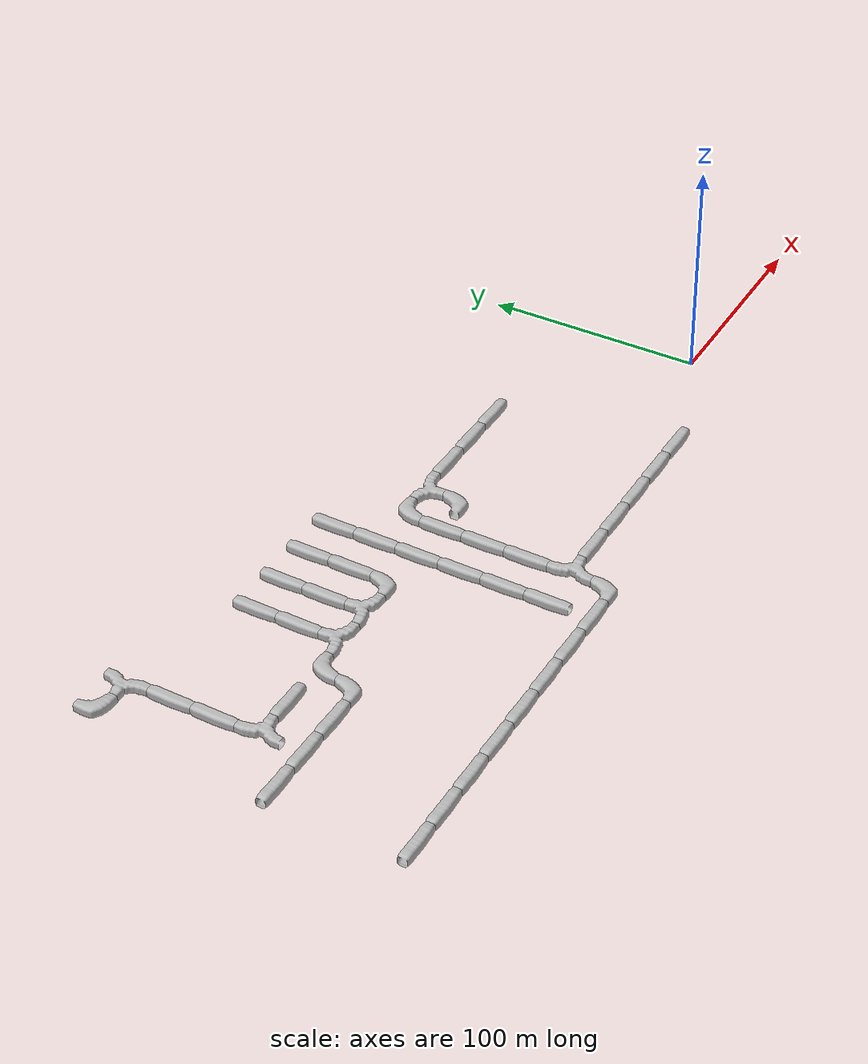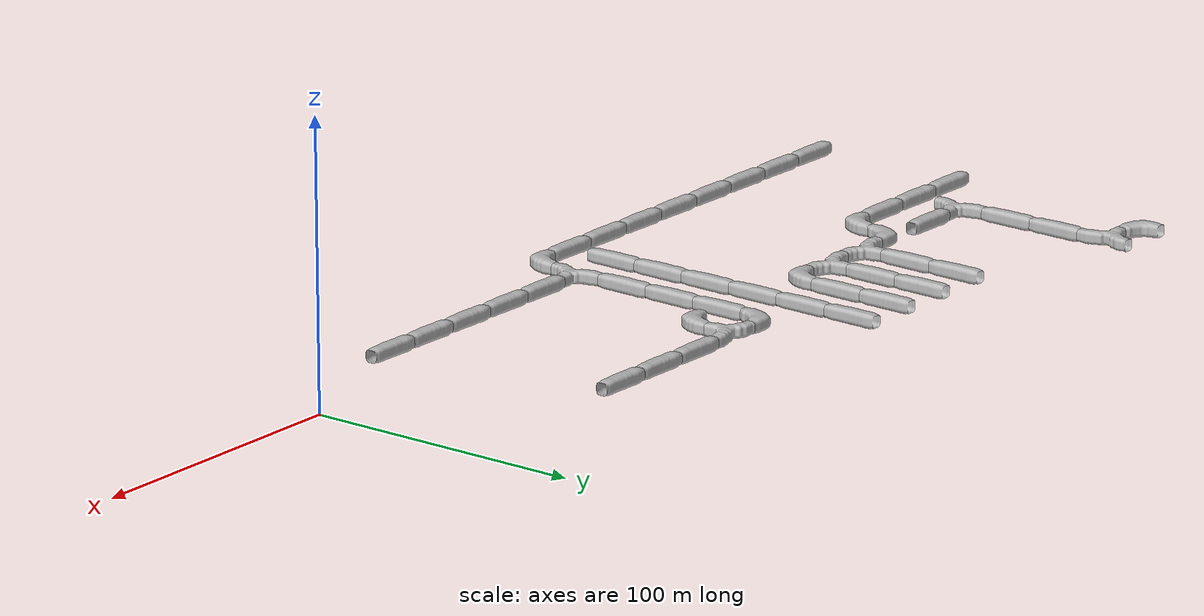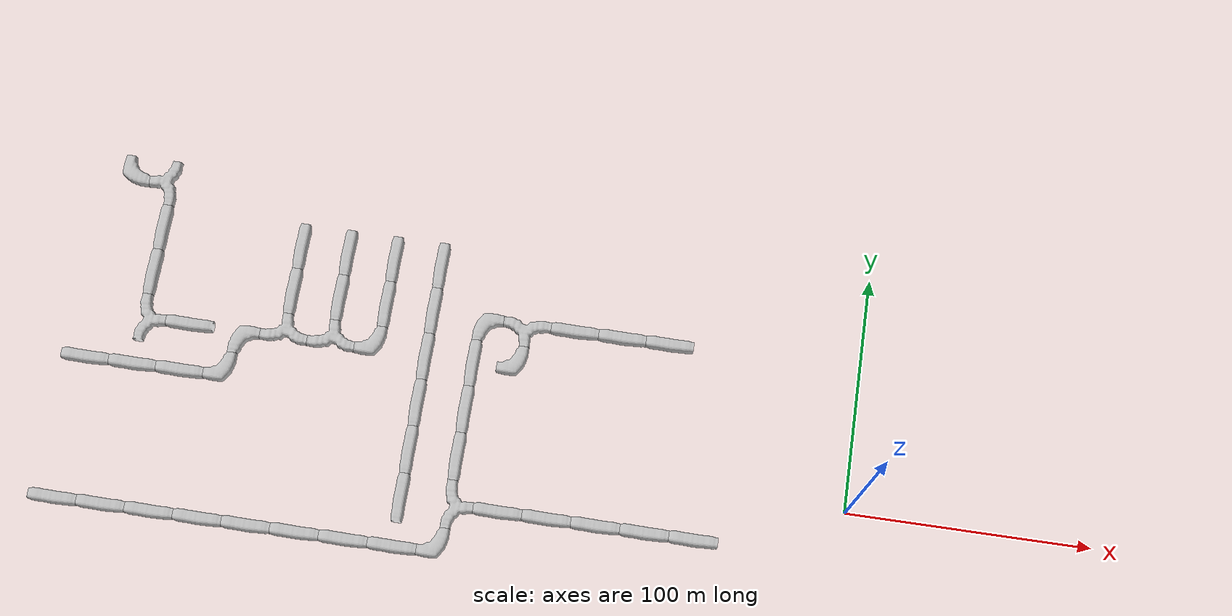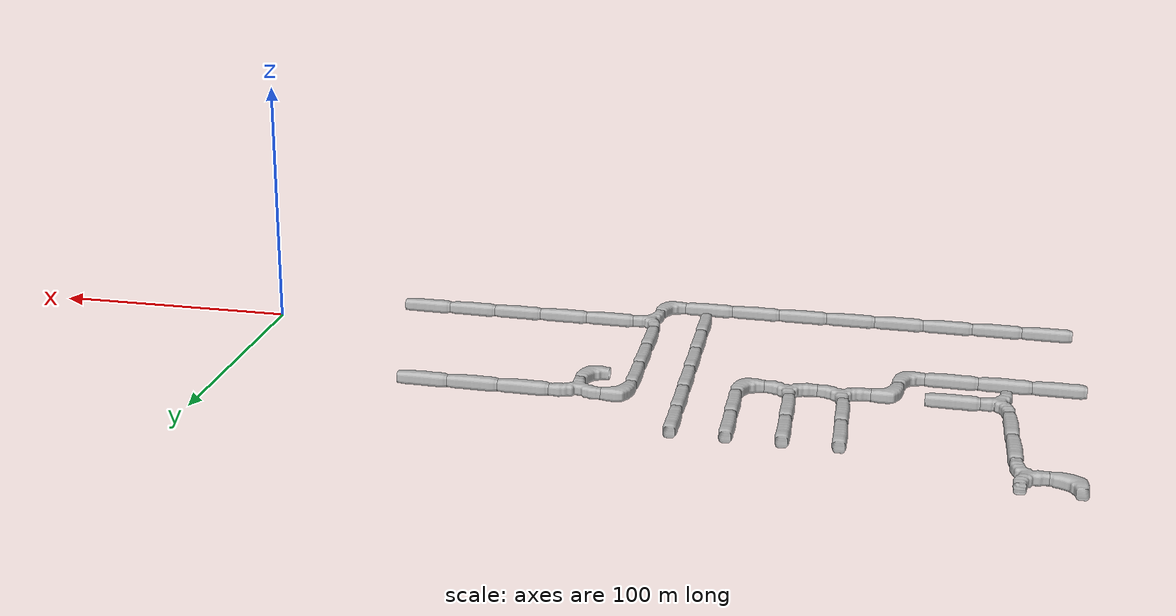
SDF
<sdf version="1.6">
 <world name="cave_8000">
  <include>
   <static>true</static>
   <name>cave_-3_-1</name>
   <pose>-60 -20 0 0 0 1.5707963267948966</pose>
   <uri>model://cave_straight_20m</uri>
  </include>
  <include>
   <static>true</static>
   <name>cave_-4_-1</name>
   <pose>-80 -20 0 0 0 1.5707963267948966</pose>
   <uri>model://cave_straight_20m</uri>
  </include>
  <include>
   <static>true</static>
   <name>cave_-5_-1</name>
   <pose>-100 -20 0 0 0 1.5707963267948966</pose>
   <uri>model://cave_straight_20m</uri>
  </include>
  <include>
   <static>true</static>
   <name>cave_-6_-1</name>
   <pose>-120 -20 0 0 0 1.5707963267948966</pose>
   <uri>model://cave_straight_20m</uri>
  </include>
  <include>
   <static>true</static>
   <name>cave_-7_-1</name>
   <pose>-140 -20 0 0 0 1.5707963267948966</pose>
   <uri>model://cave_straight_20m</uri>
  </include>
  <include>
   <static>true</static>
   <name>cave_-8_-1</name>
   <pose>-160 -20 0 0 0 -1.5707963267948966</pose>
   <uri>model://cave_3way_20m</uri>
  </include>
  <include>
   <static>true</static>
   <name>cave_-8_-2</name>
   <pose>-160 -40 0 0 0 1.5707963267948966</pose>
   <uri>model://cave_L_20m</uri>
  </include>
  <include>
   <static>true</static>
   <name>cave_-9_-2</name>
   <pose>-180 -40 0 0 0 1.5707963267948966</pose>
   <uri>model://cave_straight_20m</uri>
  </include>
  <include>
   <static>true</static>
   <name>cave_-10_-2</name>
   <pose>-200 -40 0 0 0 1.5707963267948966</pose>
   <uri>model://cave_straight_20m</uri>
  </include>
  <include>
   <static>true</static>
   <name>cave_-11_-2</name>
   <pose>-220 -40 0 0 0 1.5707963267948966</pose>
   <uri>model://cave_straight_20m</uri>
  </include>
  <include>
   <static>true</static>
   <name>cave_-12_-2</name>
   <pose>-240 -40 0 0 0 1.5707963267948966</pose>
   <uri>model://cave_straight_20m</uri>
  </include>
  <include>
   <static>true</static>
   <name>cave_-13_-2</name>
   <pose>-260 -40 0 0 0 1.5707963267948966</pose>
   <uri>model://cave_straight_20m</uri>
  </include>
  <include>
   <static>true</static>
   <name>cave_-14_-2</name>
   <pose>-280 -40 0 0 0 1.5707963267948966</pose>
   <uri>model://cave_straight_20m</uri>
  </include>
  <include>
   <static>true</static>
   <name>cave_-15_-2</name>
   <pose>-300 -40 0 0 0 1.5707963267948966</pose>
   <uri>model://cave_straight_20m</uri>
  </include>
  <include>
   <static>true</static>
   <name>cave_-16_-2</name>
   <pose>-320 -40 0 0 0 1.5707963267948966</pose>
   <uri>model://cave_straight_20m</uri>
  </include>
  <include>
   <static>true</static>
   <name>cave_-16_1</name>
   <pose>-320 20 0 0 0 1.5707963267948966</pose>
   <uri>model://cave_straight_20m</uri>
  </include>
  <include>
   <static>true</static>
   <name>cave_-15_1</name>
   <pose>-300 20 0 0 0 1.5707963267948966</pose>
   <uri>model://cave_straight_20m</uri>
  </include>
  <include>
   <static>true</static>
   <name>cave_-14_1</name>
   <pose>-280 20 0 0 0 1.5707963267948966</pose>
   <uri>model://cave_straight_20m</uri>
  </include>
  <include>
   <static>true</static>
   <name>cave_-13_1</name>
   <pose>-260 20 0 0 0 1.5707963267948966</pose>
   <uri>model://cave_L_20m</uri>
  </include>
  <include>
   <static>true</static>
   <name>cave_-13_2</name>
   <pose>-260 40 0 0 0 -1.5707963267948966</pose>
   <uri>model://cave_L_20m</uri>
  </include>
  <include>
   <static>true</static>
   <name>cave_-12_2</name>
   <pose>-240 40 0 0 0 0.0</pose>
   <uri>model://cave_3way_20m</uri>
  </include>
  <include>
   <static>true</static>
   <name>cave_-11_2</name>
   <pose>-220 40 0 0 0 0.0</pose>
   <uri>model://cave_3way_20m</uri>
  </include>
  <include>
   <static>true</static>
   <name>cave_-10_2</name>
   <pose>-200 40 0 0 0 1.5707963267948966</pose>
   <uri>model://cave_L_20m</uri>
  </include>
  <include>
   <static>true</static>
   <name>cave_-10_3</name>
   <pose>-200 60 0 0 0 0.0</pose>
   <uri>model://cave_straight_20m</uri>
  </include>
  <include>
   <static>true</static>
   <name>cave_-10_4</name>
   <pose>-200 80 0 0 0 0.0</pose>
   <uri>model://cave_straight_20m</uri>
  </include>
  <include>
   <static>true</static>
   <name>cave_-9_4</name>
   <pose>-180 80 0 0 0 0.0</pose>
   <uri>model://cave_straight_20m</uri>
  </include>
  <include>
   <static>true</static>
   <name>cave_-9_3</name>
   <pose>-180 60 0 0 0 0.0</pose>
   <uri>model://cave_straight_20m</uri>
  </include>
  <include>
   <static>true</static>
   <name>cave_-9_2</name>
   <pose>-180 40 0 0 0 0.0</pose>
   <uri>model://cave_straight_20m</uri>
  </include>
  <include>
   <static>true</static>
   <name>cave_-9_1</name>
   <pose>-180 20 0 0 0 0.0</pose>
   <uri>model://cave_straight_20m</uri>
  </include>
  <include>
   <static>true</static>
   <name>cave_-9_0</name>
   <pose>-180 0 0 0 0 0.0</pose>
   <uri>model://cave_straight_20m</uri>
  </include>
  <include>
   <static>true</static>
   <name>cave_-9_-1</name>
   <pose>-180 -20 0 0 0 0.0</pose>
   <uri>model://cave_straight_20m</uri>
  </include>
  <include>
   <static>true</static>
   <name>cave_-11_3</name>
   <pose>-220 60 0 0 0 0.0</pose>
   <uri>model://cave_straight_20m</uri>
  </include>
  <include>
   <static>true</static>
   <name>cave_-11_4</name>
   <pose>-220 80 0 0 0 0.0</pose>
   <uri>model://cave_straight_20m</uri>
  </include>
  <include>
   <static>true</static>
   <name>cave_-12_3</name>
   <pose>-240 60 0 0 0 0.0</pose>
   <uri>model://cave_straight_20m</uri>
  </include>
  <include>
   <static>true</static>
   <name>cave_-12_4</name>
   <pose>-240 80 0 0 0 0.0</pose>
   <uri>model://cave_straight_20m</uri>
  </include>
  <include>
   <static>true</static>
   <name>cave_-15_5</name>
   <pose>-300 100 0 0 0 1.5707963267948966</pose>
   <uri>model://cave_3way_20m</uri>
  </include>
  <include>
   <static>true</static>
   <name>cave_-15_4</name>
   <pose>-300 80 0 0 0 0.0</pose>
   <uri>model://cave_straight_20m</uri>
  </include>
  <include>
   <static>true</static>
   <name>cave_-15_3</name>
   <pose>-300 60 0 0 0 0.0</pose>
   <uri>model://cave_straight_20m</uri>
  </include>
  <include>
   <static>true</static>
   <name>cave_-15_2</name>
   <pose>-300 40 0 0 0 -1.5707963267948966</pose>
   <uri>model://cave_3way_20m</uri>
  </include>
  <include>
   <static>true</static>
   <name>cave_-14_2</name>
   <pose>-280 40 0 0 0 1.5707963267948966</pose>
   <uri>model://cave_straight_20m</uri>
  </include>
  <include>
   <static>true</static>
   <name>cave_-16_5</name>
   <pose>-320 100 0 0 0 0.0</pose>
   <uri>model://cave_L_20m</uri>
  </include>
  <include>
   <static>true</static>
   <name>cave_-8_0</name>
   <pose>-160 0 0 0 0 0.0</pose>
   <uri>model://cave_straight_20m</uri>
  </include>
  <include>
   <static>true</static>
   <name>cave_-8_1</name>
   <pose>-160 20 0 0 0 0.0</pose>
   <uri>model://cave_straight_20m</uri>
  </include>
  <include>
   <static>true</static>
   <name>cave_-8_2</name>
   <pose>-160 40 0 0 0 0.0</pose>
   <uri>model://cave_straight_20m</uri>
  </include>
  <include>
   <static>true</static>
   <name>cave_-8_3</name>
   <pose>-160 60 0 0 0 -1.5707963267948966</pose>
   <uri>model://cave_L_20m</uri>
  </include>
  <include>
   <static>true</static>
   <name>cave_-7_3</name>
   <pose>-140 60 0 0 0 3.141592653589793</pose>
   <uri>model://cave_3way_20m</uri>
  </include>
  <include>
   <static>true</static>
   <name>cave_-6_3</name>
   <pose>-120 60 0 0 0 1.5707963267948966</pose>
   <uri>model://cave_straight_20m</uri>
  </include>
  <include>
   <static>true</static>
   <name>cave_-5_3</name>
   <pose>-100 60 0 0 0 1.5707963267948966</pose>
   <uri>model://cave_straight_20m</uri>
  </include>
  <include>
   <static>true</static>
   <name>cave_-4_3</name>
   <pose>-80 60 0 0 0 1.5707963267948966</pose>
   <uri>model://cave_straight_20m</uri>
  </include>
  <include>
   <static>true</static>
   <name>cave_-7_2</name>
   <pose>-140 40 0 0 0 1.5707963267948966</pose>
   <uri>model://cave_L_20m</uri>
  </include>
 </world>
</sdf>
